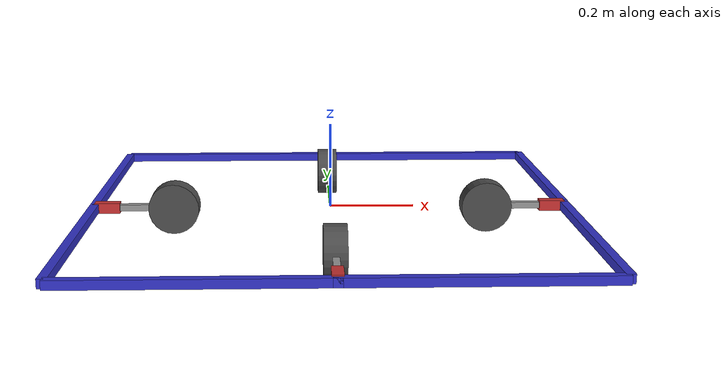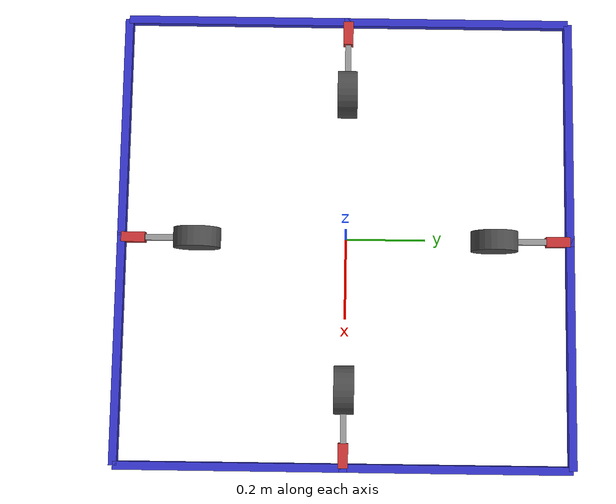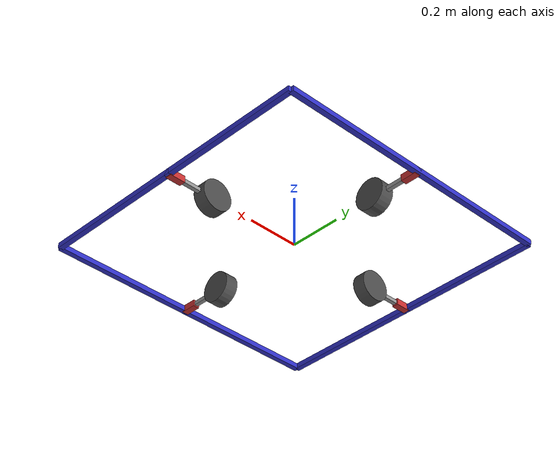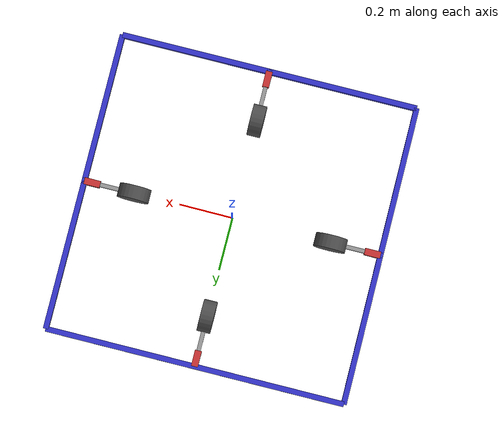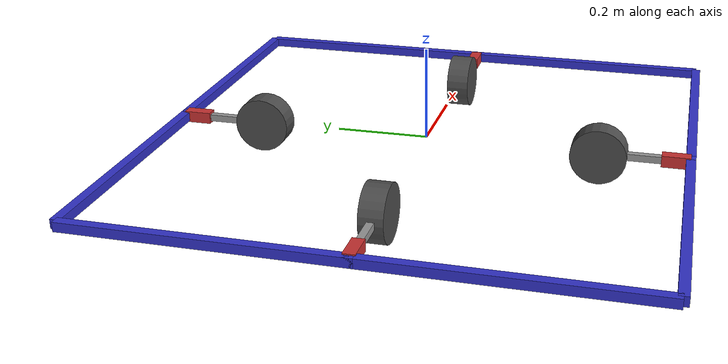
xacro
<?xml version="1.0"?>
<robot xmlns:xacro="http://www.ros.org/wiki/xacro" name="climber_robot">

  <!-- Arguments -->
  <xacro:arg name="use_sim" default="true"/>
  <xacro:arg name="sim_gz" default="true"/>

  <!-- Properties for Cylinder Climbing Robot -->
  <!-- The robot wraps around a cylinder and climbs it -->

  <!-- Cylinder dimensions (the pole being climbed) -->
  <xacro:property name="cylinder_diameter" value=".40"/>  <!-- 30cm diameter pole -->
  <xacro:property name="cylinder_radius" value="${cylinder_diameter/2}"/>

  <!-- Mecanum wheel properties -->
  <xacro:property name="wheel_radius" value="0.06"/>  <!-- 6cm radius mecanum wheel -->
  <xacro:property name="wheel_width" value="0.05"/>   <!-- 5cm wide -->
  <xacro:property name="wheel_mass" value="0.4"/>

  <!-- Wheel center distance from cylinder axis (default/home position) -->
  <!-- The inner face of the wheel touches the cylinder surface -->
  <xacro:property name="wheel_radial_distance" value="${cylinder_radius + wheel_width/2}"/>

  <!-- Linear actuator properties (physical stroke coordinates: 0.0 = retracted at limit switch, positive = extending toward cylinder) -->
  <xacro:property name="actuator_stroke" value="0.16"/>       <!-- 16cm total travel -->
  <xacro:property name="actuator_home" value="0.0"/>          <!-- 0 = fully retracted at PIN_ACT_LIMIT_IN -->
  <xacro:property name="actuator_touch" value="0.15"/>        <!-- 15cm extension = touching cylinder surface -->
  <xacro:property name="actuator_min" value="0.0"/>           <!-- 0cm (fully retracted clearance) -->
  <xacro:property name="actuator_max" value="${actuator_stroke}"/>  <!-- 16cm outward (1cm max grip into cylinder) -->
  <xacro:property name="actuator_mass" value="0.3"/>
  <xacro:property name="actuator_length" value="0.06"/>       <!-- Visual length of actuator body -->
  <xacro:property name="actuator_width" value="0.025"/>       <!-- Visual cross-section -->

  <!-- Frame properties -->
  <xacro:property name="arm_length" value="0.08"/>             <!-- Radial arm from wheel outward -->
  <xacro:property name="arm_thickness" value="0.02"/>
  <xacro:property name="frame_ring_radius" value="0.565"/>
  <xacro:property name="frame_size" value="1.13"/>
  <xacro:property name="frame_height" value="0.02"/>
  <xacro:property name="base_mass" value="3.0"/>

  <!-- Angles for N, W, S, E formation (0, 90, 180, 270 degrees) -->
  <xacro:property name="angle_n" value="${0}"/>           <!-- 0° - North (+X) -->
  <xacro:property name="angle_w" value="${pi/2}"/>        <!-- 90° - West (+Y) -->
  <xacro:property name="angle_s" value="${pi}"/>          <!-- 180° - South (-X) -->
  <xacro:property name="angle_e" value="${3*pi/2}"/>      <!-- 270° - East (-Y) -->

  <!-- Include materials -->
  <xacro:include filename="$(find climber_base)/urdf/materials.xacro"/>

  <!-- Include ros2_control -->
  <xacro:include filename="$(find climber_base)/urdf/ros2_control.xacro"/>

  <!-- Include Gazebo plugins -->
  <xacro:include filename="$(find climber_base)/urdf/gazebo.xacro"/>

  <!-- Inertia macros -->
  <xacro:macro name="box_inertia" params="m x y z">
    <inertia ixx="${m*(y*y+z*z)/12}" ixy="0" ixz="0"
             iyy="${m*(x*x+z*z)/12}" iyz="0"
             izz="${m*(x*x+y*y)/12}"/>
  </xacro:macro>

  <xacro:macro name="cylinder_inertia" params="m r h">
    <inertia ixx="${m*(3*r*r+h*h)/12}" ixy="0" ixz="0"
             iyy="${m*(3*r*r+h*h)/12}" iyz="0"
             izz="${m*r*r/2}"/>
  </xacro:macro>

  <xacro:macro name="sphere_inertia" params="m r">
    <inertia ixx="${2*m*r*r/5}" ixy="0" ixz="0"
             iyy="${2*m*r*r/5}" iyz="0"
             izz="${2*m*r*r/5}"/>
  </xacro:macro>

  <!-- Base Link (center of robot, aligned with cylinder axis) -->
  <link name="base_link"/>

  <!-- Chassis - inertial mass at center (no solid visual to avoid hiding wheels) -->
  <joint name="chassis_joint" type="fixed">
    <parent link="base_link"/>
    <child link="chassis"/>
    <origin xyz="0 0 0" rpy="0 0 0"/>
  </joint>

  <link name="chassis">
    <inertial>
      <origin xyz="0 0 0" rpy="0 0 0"/>
      <mass value="${base_mass}"/>
      <xacro:cylinder_inertia m="${base_mass}" r="${frame_ring_radius}" h="${frame_height}"/>
    </inertial>
  </link>

  <!-- Radial arm + linear actuator + wheel assembly macro -->
  <!-- Chain: base_link → carriage_anchor (fixed, sets radial direction) -->
  <!--        → actuator_carriage (prismatic, slides radially) -->
  <!--        → wheel (continuous, spins for climbing) -->
  <xacro:macro name="climbing_wheel_assembly" params="prefix angle">
    <!-- Frame ring attachment point (fixed to outer ring) -->
    <joint name="${prefix}_frame_node_joint" type="fixed">
      <parent link="base_link"/>
      <child link="${prefix}_frame_node"/>
      <origin xyz="${frame_ring_radius * cos(angle)} ${frame_ring_radius * sin(angle)} 0" rpy="0 0 ${angle}"/>
    </joint>

    <link name="${prefix}_frame_node">
      <visual>
        <origin xyz="0 0 0" rpy="0 0 0"/>
        <geometry>
          <box size="${arm_thickness} ${arm_thickness} ${arm_thickness}"/>
        </geometry>
        <material name="blue"/>
      </visual>
    </link>

    <!-- Carriage anchor: fixed to base_link, oriented so X points radially outward -->
    <!-- The prismatic joint will slide along negative X (inward toward cylinder) -->
    <joint name="${prefix}_anchor_joint" type="fixed">
      <parent link="base_link"/>
      <child link="${prefix}_anchor"/>
      <origin xyz="${frame_ring_radius * cos(angle)} ${frame_ring_radius * sin(angle)} 0" rpy="0 0 ${angle}"/>
    </joint>

    <link name="${prefix}_anchor">
      <!-- Actuator body visual (the static part of the linear actuator) -->
      <visual>
        <origin xyz="${-actuator_length/2} 0 0" rpy="0 0 0"/>
        <geometry>
          <box size="${actuator_length} ${actuator_width} ${actuator_width}"/>
        </geometry>
        <material name="red"/>
      </visual>
      <inertial>
        <origin xyz="0 0 0" rpy="0 0 0"/>
        <mass value="${actuator_mass / 2}"/>
        <xacro:box_inertia m="${actuator_mass / 2}" x="${actuator_length}" y="${actuator_width}" z="${actuator_width}"/>
      </inertial>
    </link>

    <!-- Linear actuator prismatic joint (physical stroke coordinates) -->
    <!-- Slides along negative X (radially inward, toward cylinder center) -->
    <!-- position=0.00 → fully retracted at chassis limit switch (PIN_ACT_LIMIT_IN) -->
    <!-- position=0.15 → wheel touching cylinder surface -->
    <!-- position=0.16 → max extension (pressing 1cm into cylinder surface) -->
    <joint name="${prefix}_actuator_joint" type="prismatic">
      <parent link="${prefix}_anchor"/>
      <child link="${prefix}_carriage"/>
      <origin xyz="0 0 0" rpy="0 0 0"/>
      <axis xyz="-1 0 0"/>
      <limit lower="${actuator_min}" upper="${actuator_max}" effort="100.0" velocity="0.1"/>
      <dynamics damping="5.0" friction="1.0"/>
    </joint>

    <link name="${prefix}_carriage">
      <!-- Actuator rod visual (the moving part) -->
      <visual>
        <origin xyz="${-(frame_ring_radius - (wheel_radial_distance + actuator_touch))/2} 0 0" rpy="0 0 0"/>
        <geometry>
          <box size="${frame_ring_radius - (wheel_radial_distance + actuator_touch)} ${actuator_width * 0.6} ${actuator_width * 0.6}"/>
        </geometry>
        <material name="grey"/>
      </visual>
      <inertial>
        <origin xyz="0 0 0" rpy="0 0 0"/>
        <mass value="${actuator_mass / 2}"/>
        <xacro:box_inertia m="${actuator_mass / 2}" x="${actuator_length}" y="${actuator_width}" z="${actuator_width}"/>
      </inertial>
    </link>

    <!-- Mecanum wheel attached to carriage -->
    <!-- At q=0.0 (retracted), wheel center is at wheel_radial_distance + actuator_touch -->
    <!-- Extending by q brings wheel inward toward cylinder center -->
    <joint name="${prefix}_wheel_joint" type="continuous">
      <parent link="${prefix}_carriage"/>
      <child link="${prefix}_wheel"/>
      <origin xyz="${-(frame_ring_radius - (wheel_radial_distance + actuator_touch))} 0 0" rpy="0 0 0"/>
      <axis xyz="0 -1 0"/>
      <limit effort="10.0" velocity="10.0"/>
      <dynamics damping="0.2" friction="0.3"/>
    </joint>

    <link name="${prefix}_wheel">
      <visual>
        <origin xyz="0 0 0" rpy="${pi/2} 0 0"/>
        <geometry>
          <cylinder radius="${wheel_radius}" length="${wheel_width}"/>
        </geometry>
        <material name="dark_grey"/>
      </visual>
      <collision>
        <origin xyz="0 0 0" rpy="${pi/2} 0 0"/>
        <geometry>
          <cylinder radius="${wheel_radius}" length="${wheel_width}"/>
        </geometry>
      </collision>
      <inertial>
        <origin xyz="0 0 0" rpy="${pi/2} 0 0"/>
        <mass value="${wheel_mass}"/>
        <xacro:cylinder_inertia m="${wheel_mass}" r="${wheel_radius}" h="${wheel_width}"/>
      </inertial>
    </link>
  </xacro:macro>

  <!-- Create 4 climbing wheel assemblies in X formation -->
  <xacro:climbing_wheel_assembly prefix="n" angle="${angle_n}"/>
  <xacro:climbing_wheel_assembly prefix="w" angle="${angle_w}"/>
  <xacro:climbing_wheel_assembly prefix="s" angle="${angle_s}"/>
  <xacro:climbing_wheel_assembly prefix="e" angle="${angle_e}"/>

  <!-- Frame sides forming a square -->
  <xacro:macro name="frame_side" params="name angle">
    <joint name="${name}_joint" type="fixed">
      <parent link="base_link"/>
      <child link="${name}"/>
      <origin xyz="${frame_ring_radius * cos(angle)} ${frame_ring_radius * sin(angle)} 0"
              rpy="0 0 ${angle}"/>
    </joint>
    <link name="${name}">
      <visual>
        <origin xyz="0 0 0" rpy="0 0 0"/>
        <geometry>
          <!-- Box: thick in X (radial), long in Y (tangential), thick in Z -->
          <box size="${arm_thickness} ${frame_size} ${arm_thickness}"/>
        </geometry>
        <material name="blue"/>
      </visual>
      <collision>
        <origin xyz="0 0 0" rpy="0 0 0"/>
        <geometry>
          <box size="${arm_thickness} ${frame_size} ${arm_thickness}"/>
        </geometry>
      </collision>
      <inertial>
        <origin xyz="0 0 0" rpy="0 0 0"/>
        <mass value="0.5"/>
        <xacro:box_inertia m="0.5" x="${arm_thickness}" y="${frame_size}" z="${arm_thickness}"/>
      </inertial>
    </link>
  </xacro:macro>

  <!-- The 4 sides of the 113cm square frame aligned with N, W, S, E anchors -->
  <xacro:frame_side name="frame_n" angle="${angle_n}"/>
  <xacro:frame_side name="frame_w" angle="${angle_w}"/>
  <xacro:frame_side name="frame_s" angle="${angle_s}"/>
  <xacro:frame_side name="frame_e" angle="${angle_e}"/>

</robot>

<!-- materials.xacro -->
<robot xmlns:xacro="http://www.ros.org/wiki/xacro">

  <material name="blue">
    <color rgba="0.2 0.2 0.8 1.0"/>
  </material>

  <material name="dark_grey">
    <color rgba="0.3 0.3 0.3 1.0"/>
  </material>

  <material name="light_grey">
    <color rgba="0.6 0.6 0.6 1.0"/>
  </material>

  <material name="red">
    <color rgba="0.8 0.2 0.2 1.0"/>
  </material>

  <material name="green">
    <color rgba="0.2 0.8 0.2 1.0"/>
  </material>

  <material name="white">
    <color rgba="1.0 1.0 1.0 1.0"/>
  </material>

  <material name="black">
    <color rgba="0.1 0.1 0.1 1.0"/>
  </material>

  <material name="orange">
    <color rgba="1.0 0.5 0.0 1.0"/>
  </material>

</robot>
